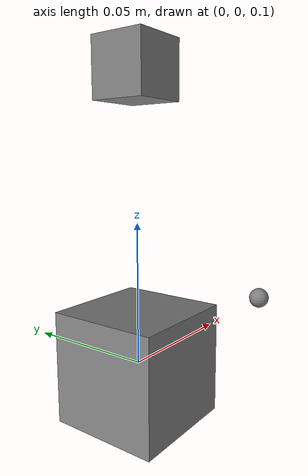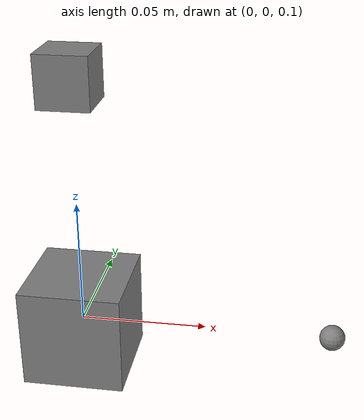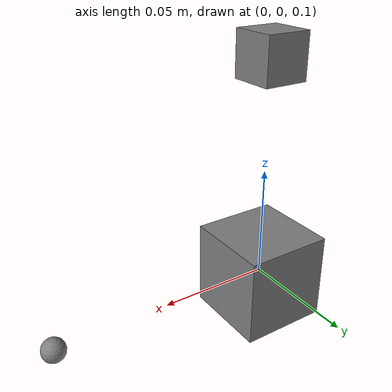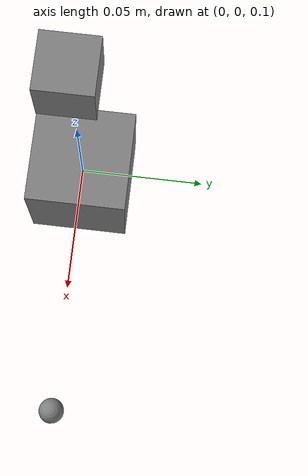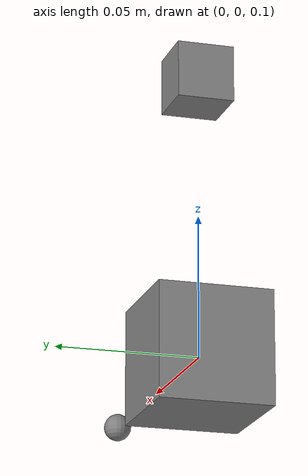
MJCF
<mujoco model="smooth_slider_sysid_fixture">
  <compiler angle="radian" autolimits="true"/>
  <option timestep="0.01" gravity="0 0 0" integrator="implicitfast">
    <flag contact="disable"/>
  </option>
  <worldbody>
    <body name="slider_body" pos="0 0 0.1">
      <joint name="slider" type="slide" axis="1 0 0" range="-1 1" damping="0.4"/>
      <geom name="slider_geom" type="box" size="0.02 0.02 0.02" mass="0.25"/>
      <site name="tool_site" pos="0.1 0 0"/>
    </body>
    <body name="fixture_object" pos="0 0 0.2">
      <freejoint name="fixture_object_free"/>
      <geom name="fixture_object_geom" type="box" size="0.01 0.01 0.01" mass="0.1"/>
    </body>
  </worldbody>
  <actuator>
    <position name="slider_position" joint="slider" kp="18"/>
  </actuator>
</mujoco>
